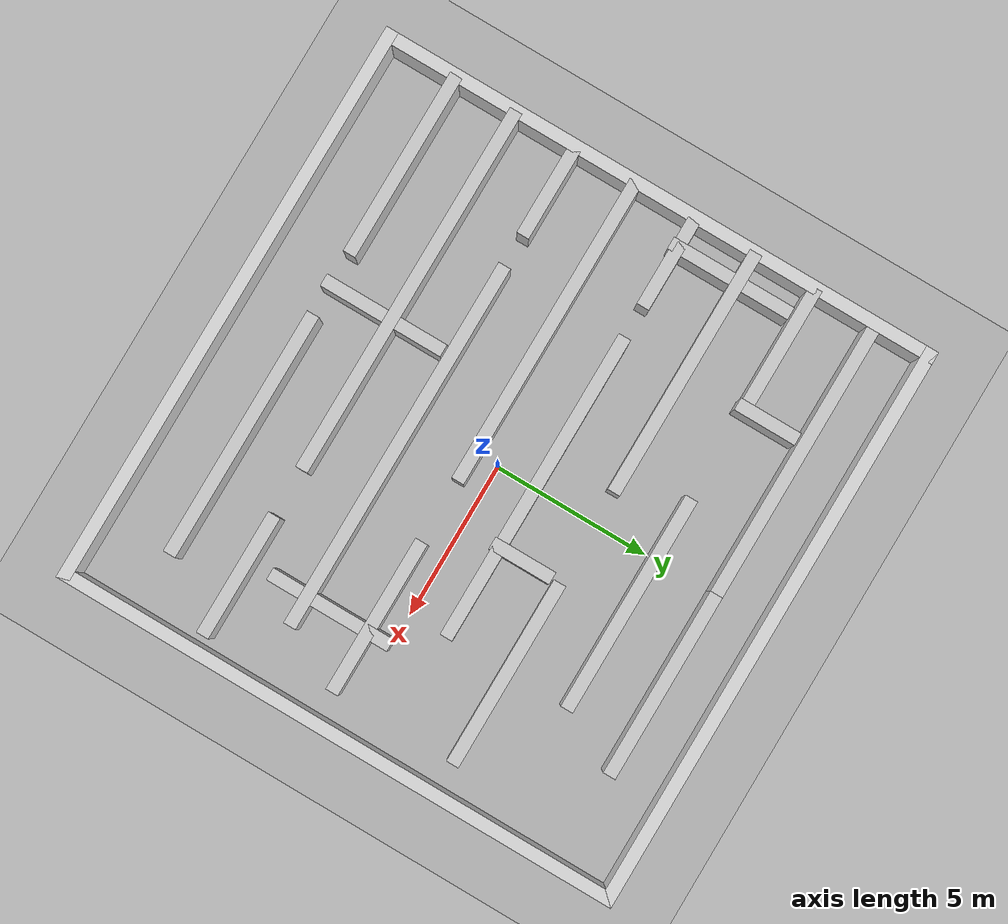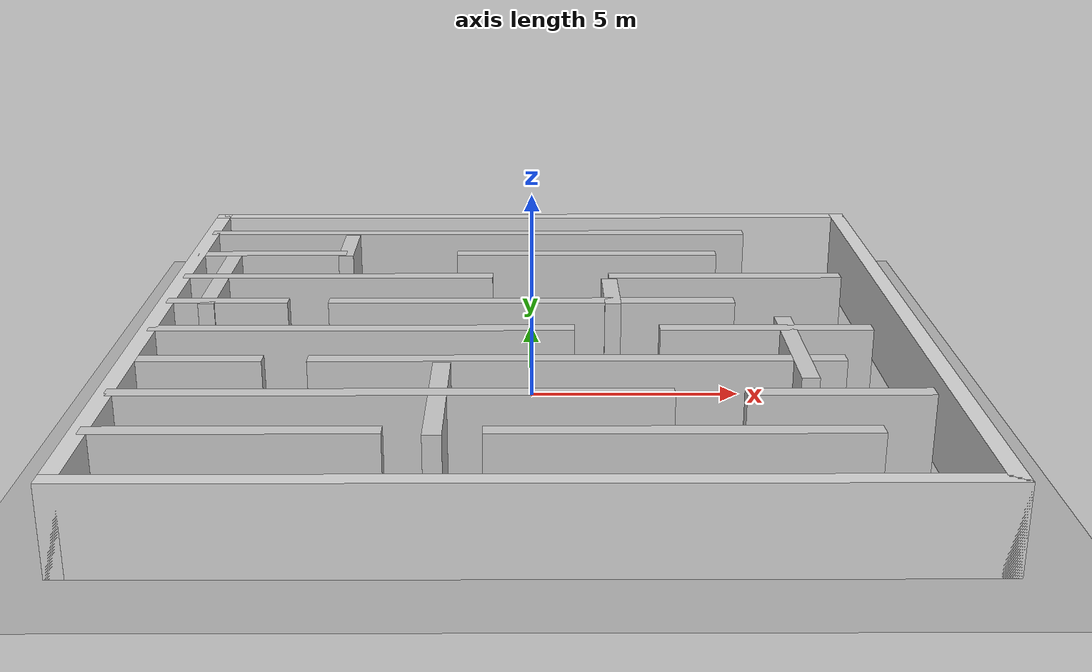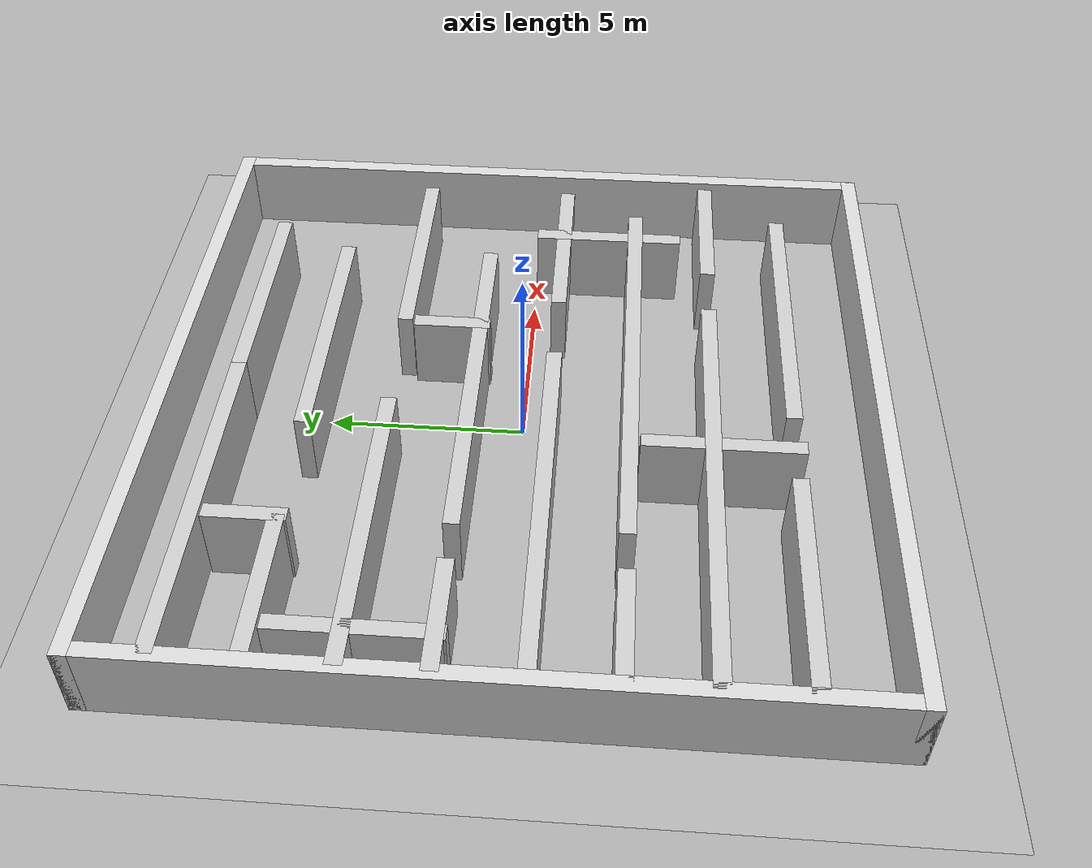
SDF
<?xml version="1.0"?>
<!--
  World: maze
  A classic maze-style environment for advanced SLAM and path-planning.
  Corridors are ~1.5 m wide so the drone can navigate them.
-->
<sdf version="1.9">
  <world name="maze">

    <physics name="1ms" type="ignored">
      <max_step_size>0.001</max_step_size>
      <real_time_factor>1.0</real_time_factor>
    </physics>

    <plugin filename="gz-sim-physics-system"       name="gz::sim::systems::Physics"/>
    <plugin filename="gz-sim-user-commands-system" name="gz::sim::systems::UserCommands"/>
    <plugin filename="gz-sim-scene-broadcaster-system" name="gz::sim::systems::SceneBroadcaster"/>
    <plugin filename="gz-sim-sensors-system"       name="gz::sim::systems::Sensors">
      <render_engine>ogre2</render_engine>
    </plugin>
    <plugin filename="gz-sim-imu-system"           name="gz::sim::systems::Imu"/>

    <light type="directional" name="sun">
      <cast_shadows>true</cast_shadows>
      <pose>0 0 10 0 0 0</pose>
      <diffuse>0.8 0.8 0.8 1</diffuse>
      <specular>0.2 0.2 0.2 1</specular>
      <attenuation>
        <range>1000</range><constant>0.9</constant>
        <linear>0.01</linear><quadratic>0.001</quadratic>
      </attenuation>
      <direction>-0.5 0.1 -0.9</direction>
    </light>

    <model name="ground_plane">
      <static>true</static>
      <link name="link">
        <collision name="collision">
          <geometry><plane><normal>0 0 1</normal><size>100 100</size></plane></geometry>
        </collision>
        <visual name="visual">
          <geometry><plane><normal>0 0 1</normal><size>100 100</size></plane></geometry>
          <material>
            <ambient>0.7 0.7 0.7 1</ambient><diffuse>0.7 0.7 0.7 1</diffuse>
          </material>
        </visual>
      </link>
    </model>

    <!-- ====== Outer boundary (18×18 m) ====== -->
    <model name="outer_south"><static>true</static><pose>0 -9 1 0 0 0</pose>
      <link name="link">
        <collision name="c"><geometry><box><size>18.4 0.4 2</size></box></geometry></collision>
        <visual name="v"><geometry><box><size>18.4 0.4 2</size></box></geometry>
          <material><ambient>0.85 0.85 0.85 1</ambient><diffuse>0.85 0.85 0.85 1</diffuse></material></visual>
      </link></model>

    <model name="outer_north"><static>true</static><pose>0 9 1 0 0 0</pose>
      <link name="link">
        <collision name="c"><geometry><box><size>18.4 0.4 2</size></box></geometry></collision>
        <visual name="v"><geometry><box><size>18.4 0.4 2</size></box></geometry>
          <material><ambient>0.85 0.85 0.85 1</ambient><diffuse>0.85 0.85 0.85 1</diffuse></material></visual>
      </link></model>

    <model name="outer_west"><static>true</static><pose>-9 0 1 0 0 0</pose>
      <link name="link">
        <collision name="c"><geometry><box><size>0.4 18.4 2</size></box></geometry></collision>
        <visual name="v"><geometry><box><size>0.4 18.4 2</size></box></geometry>
          <material><ambient>0.85 0.85 0.85 1</ambient><diffuse>0.85 0.85 0.85 1</diffuse></material></visual>
      </link></model>

    <model name="outer_east"><static>true</static><pose>9 0 1 0 0 0</pose>
      <link name="link">
        <collision name="c"><geometry><box><size>0.4 18.4 2</size></box></geometry></collision>
        <visual name="v"><geometry><box><size>0.4 18.4 2</size></box></geometry>
          <material><ambient>0.85 0.85 0.85 1</ambient><diffuse>0.85 0.85 0.85 1</diffuse></material></visual>
      </link></model>

    <!-- ====== Internal maze walls ====== -->
    <!-- Row 1 -->
    <model name="w1"><static>true</static><pose>-4.5 7.25 1 0 0 0</pose>
      <link name="link">
        <collision name="c"><geometry><box><size>9 0.4 2</size></box></geometry></collision>
        <visual name="v"><geometry><box><size>9 0.4 2</size></box></geometry>
          <material><ambient>0.8 0.8 0.8 1</ambient><diffuse>0.8 0.8 0.8 1</diffuse></material></visual>
      </link></model>

    <model name="w2"><static>true</static><pose>3 7.25 1 0 0 0</pose>
      <link name="link">
        <collision name="c"><geometry><box><size>6 0.4 2</size></box></geometry></collision>
        <visual name="v"><geometry><box><size>6 0.4 2</size></box></geometry>
          <material><ambient>0.8 0.8 0.8 1</ambient><diffuse>0.8 0.8 0.8 1</diffuse></material></visual>
      </link></model>

    <!-- Row 2 -->
    <model name="w3"><static>true</static><pose>-7 5.25 1 0 0 0</pose>
      <link name="link">
        <collision name="c"><geometry><box><size>4 0.4 2</size></box></geometry></collision>
        <visual name="v"><geometry><box><size>4 0.4 2</size></box></geometry>
          <material><ambient>0.8 0.8 0.8 1</ambient><diffuse>0.8 0.8 0.8 1</diffuse></material></visual>
      </link></model>

    <model name="w4"><static>true</static><pose>1.5 5.25 1 0 0 0</pose>
      <link name="link">
        <collision name="c"><geometry><box><size>7 0.4 2</size></box></geometry></collision>
        <visual name="v"><geometry><box><size>7 0.4 2</size></box></geometry>
          <material><ambient>0.8 0.8 0.8 1</ambient><diffuse>0.8 0.8 0.8 1</diffuse></material></visual>
      </link></model>

    <!-- Row 3 -->
    <model name="w5"><static>true</static><pose>-5 3.25 1 0 0 0</pose>
      <link name="link">
        <collision name="c"><geometry><box><size>8 0.4 2</size></box></geometry></collision>
        <visual name="v"><geometry><box><size>8 0.4 2</size></box></geometry>
          <material><ambient>0.8 0.8 0.8 1</ambient><diffuse>0.8 0.8 0.8 1</diffuse></material></visual>
      </link></model>

    <model name="w6"><static>true</static><pose>5 3.25 1 0 0 0</pose>
      <link name="link">
        <collision name="c"><geometry><box><size>6 0.4 2</size></box></geometry></collision>
        <visual name="v"><geometry><box><size>6 0.4 2</size></box></geometry>
          <material><ambient>0.8 0.8 0.8 1</ambient><diffuse>0.8 0.8 0.8 1</diffuse></material></visual>
      </link></model>

    <!-- Row 4 -->
    <model name="w7"><static>true</static><pose>-7.5 1.25 1 0 0 0</pose>
      <link name="link">
        <collision name="c"><geometry><box><size>3 0.4 2</size></box></geometry></collision>
        <visual name="v"><geometry><box><size>3 0.4 2</size></box></geometry>
          <material><ambient>0.8 0.8 0.8 1</ambient><diffuse>0.8 0.8 0.8 1</diffuse></material></visual>
      </link></model>

    <model name="w8"><static>true</static><pose>0 1.25 1 0 0 0</pose>
      <link name="link">
        <collision name="c"><geometry><box><size>10 0.4 2</size></box></geometry></collision>
        <visual name="v"><geometry><box><size>10 0.4 2</size></box></geometry>
          <material><ambient>0.8 0.8 0.8 1</ambient><diffuse>0.8 0.8 0.8 1</diffuse></material></visual>
      </link></model>

    <!-- Row 5 (mid) -->
    <model name="w9"><static>true</static><pose>-4 -0.75 1 0 0 0</pose>
      <link name="link">
        <collision name="c"><geometry><box><size>10 0.4 2</size></box></geometry></collision>
        <visual name="v"><geometry><box><size>10 0.4 2</size></box></geometry>
          <material><ambient>0.8 0.8 0.8 1</ambient><diffuse>0.8 0.8 0.8 1</diffuse></material></visual>
      </link></model>

    <model name="w10"><static>true</static><pose>5.5 -0.75 1 0 0 0</pose>
      <link name="link">
        <collision name="c"><geometry><box><size>5 0.4 2</size></box></geometry></collision>
        <visual name="v"><geometry><box><size>5 0.4 2</size></box></geometry>
          <material><ambient>0.8 0.8 0.8 1</ambient><diffuse>0.8 0.8 0.8 1</diffuse></material></visual>
      </link></model>

    <!-- Row 6 -->
    <model name="w11"><static>true</static><pose>-7.5 -2.75 1 0 0 0</pose>
      <link name="link">
        <collision name="c"><geometry><box><size>3 0.4 2</size></box></geometry></collision>
        <visual name="v"><geometry><box><size>3 0.4 2</size></box></geometry>
          <material><ambient>0.8 0.8 0.8 1</ambient><diffuse>0.8 0.8 0.8 1</diffuse></material></visual>
      </link></model>

    <model name="w12"><static>true</static><pose>1 -2.75 1 0 0 0</pose>
      <link name="link">
        <collision name="c"><geometry><box><size>12 0.4 2</size></box></geometry></collision>
        <visual name="v"><geometry><box><size>12 0.4 2</size></box></geometry>
          <material><ambient>0.8 0.8 0.8 1</ambient><diffuse>0.8 0.8 0.8 1</diffuse></material></visual>
      </link></model>

    <!-- Row 7 -->
    <model name="w13"><static>true</static><pose>-3 -4.75 1 0 0 0</pose>
      <link name="link">
        <collision name="c"><geometry><box><size>12 0.4 2</size></box></geometry></collision>
        <visual name="v"><geometry><box><size>12 0.4 2</size></box></geometry>
          <material><ambient>0.8 0.8 0.8 1</ambient><diffuse>0.8 0.8 0.8 1</diffuse></material></visual>
      </link></model>

    <model name="w14"><static>true</static><pose>6.5 -4.75 1 0 0 0</pose>
      <link name="link">
        <collision name="c"><geometry><box><size>4 0.4 2</size></box></geometry></collision>
        <visual name="v"><geometry><box><size>4 0.4 2</size></box></geometry>
          <material><ambient>0.8 0.8 0.8 1</ambient><diffuse>0.8 0.8 0.8 1</diffuse></material></visual>
      </link></model>

    <!-- Row 8 -->
    <model name="w15"><static>true</static><pose>-6 -6.75 1 0 0 0</pose>
      <link name="link">
        <collision name="c"><geometry><box><size>6 0.4 2</size></box></geometry></collision>
        <visual name="v"><geometry><box><size>6 0.4 2</size></box></geometry>
          <material><ambient>0.8 0.8 0.8 1</ambient><diffuse>0.8 0.8 0.8 1</diffuse></material></visual>
      </link></model>

    <model name="w16"><static>true</static><pose>3 -6.75 1 0 0 0</pose>
      <link name="link">
        <collision name="c"><geometry><box><size>8 0.4 2</size></box></geometry></collision>
        <visual name="v"><geometry><box><size>8 0.4 2</size></box></geometry>
          <material><ambient>0.8 0.8 0.8 1</ambient><diffuse>0.8 0.8 0.8 1</diffuse></material></visual>
      </link></model>

    <!-- Vertical connecting walls -->
    <model name="v1"><static>true</static><pose>-8 3 1 0 0 0</pose>
      <link name="link">
        <collision name="c"><geometry><box><size>0.4 4 2</size></box></geometry></collision>
        <visual name="v"><geometry><box><size>0.4 4 2</size></box></geometry>
          <material><ambient>0.8 0.8 0.8 1</ambient><diffuse>0.8 0.8 0.8 1</diffuse></material></visual>
      </link></model>

    <model name="v2"><static>true</static><pose>-5 6 1 0 0 0</pose>
      <link name="link">
        <collision name="c"><geometry><box><size>0.4 2 2</size></box></geometry></collision>
        <visual name="v"><geometry><box><size>0.4 2 2</size></box></geometry>
          <material><ambient>0.8 0.8 0.8 1</ambient><diffuse>0.8 0.8 0.8 1</diffuse></material></visual>
      </link></model>

    <model name="v3"><static>true</static><pose>2 2 1 0 0 0</pose>
      <link name="link">
        <collision name="c"><geometry><box><size>0.4 2 2</size></box></geometry></collision>
        <visual name="v"><geometry><box><size>0.4 2 2</size></box></geometry>
          <material><ambient>0.8 0.8 0.8 1</ambient><diffuse>0.8 0.8 0.8 1</diffuse></material></visual>
      </link></model>

    <model name="v4"><static>true</static><pose>6 -2 1 0 0 0</pose>
      <link name="link">
        <collision name="c"><geometry><box><size>0.4 4 2</size></box></geometry></collision>
        <visual name="v"><geometry><box><size>0.4 4 2</size></box></geometry>
          <material><ambient>0.8 0.8 0.8 1</ambient><diffuse>0.8 0.8 0.8 1</diffuse></material></visual>
      </link></model>

    <model name="v5"><static>true</static><pose>-2 -5 1 0 0 0</pose>
      <link name="link">
        <collision name="c"><geometry><box><size>0.4 4 2</size></box></geometry></collision>
        <visual name="v"><geometry><box><size>0.4 4 2</size></box></geometry>
          <material><ambient>0.8 0.8 0.8 1</ambient><diffuse>0.8 0.8 0.8 1</diffuse></material></visual>
      </link></model>

  </world>
</sdf>
